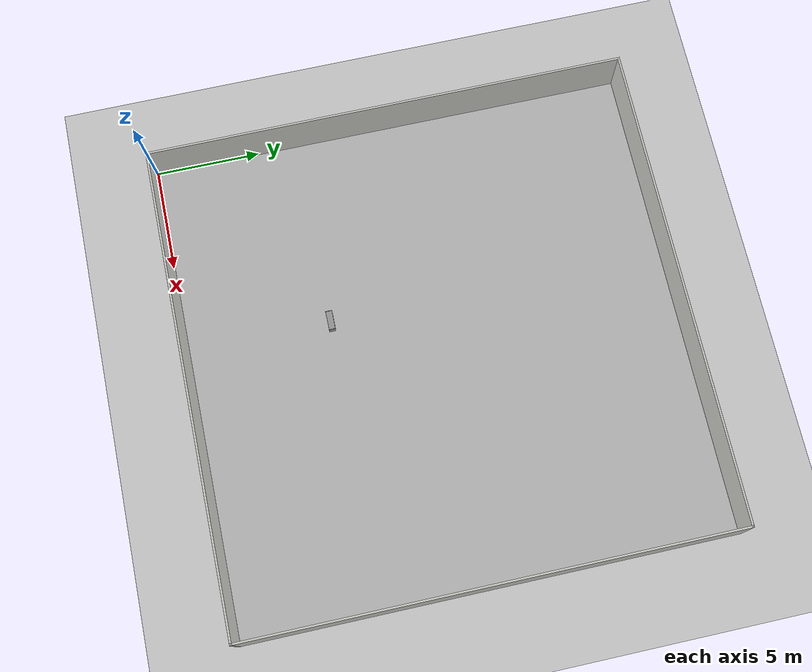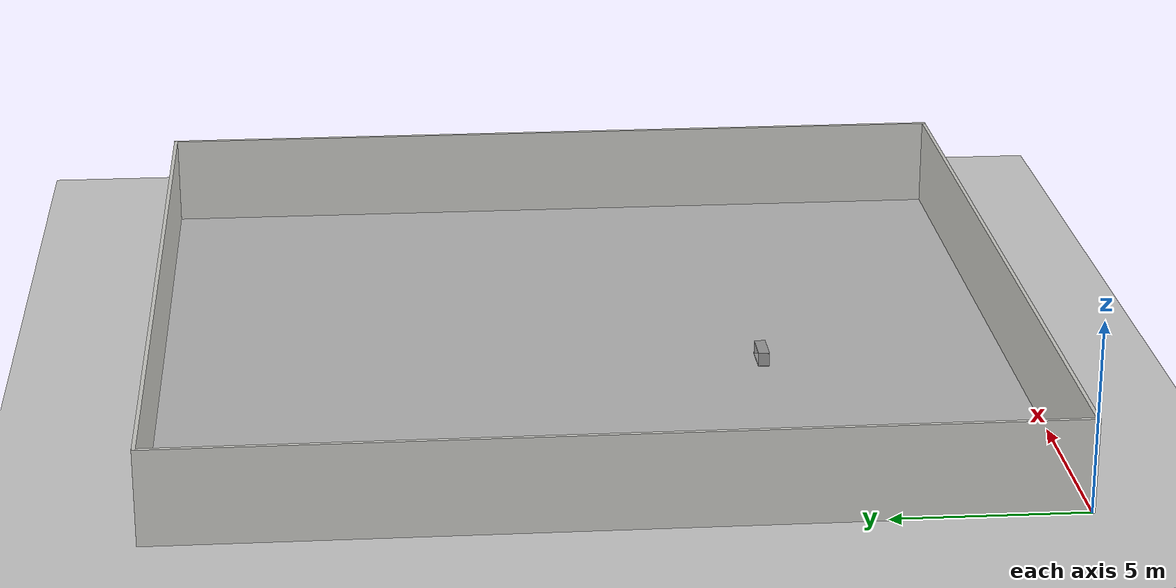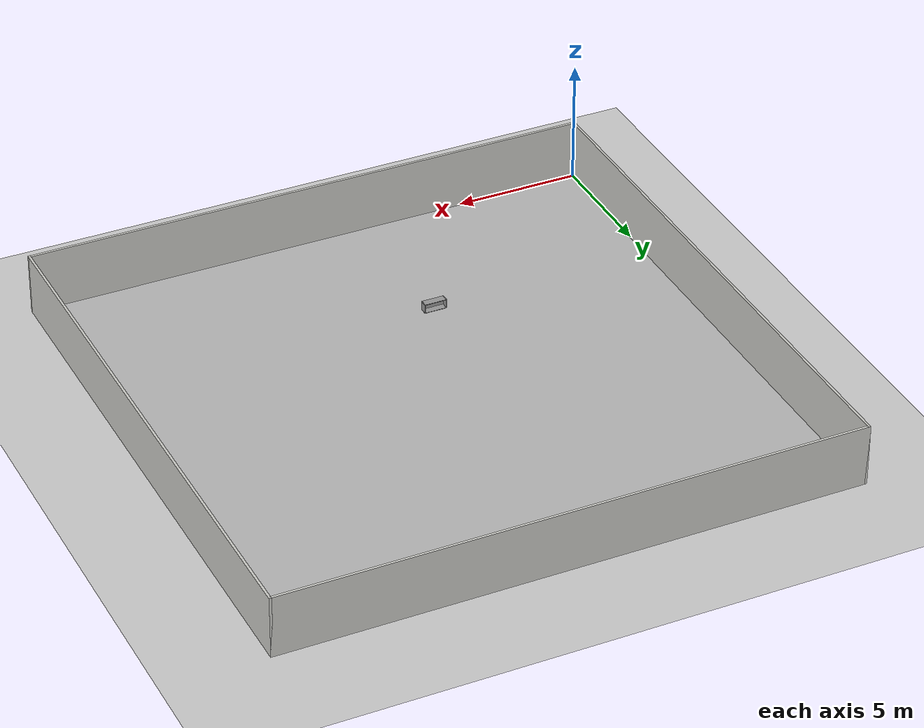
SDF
<sdf version="1.6">
 <world name="default">
  <model name="ground_plane">
   <static>1</static>
   <link name="link">
    <collision name="collision">
     <geometry><plane><normal>0 0 1</normal><size>100 100</size></plane></geometry>
     <surface><friction><ode><mu>100</mu><mu2>50</mu2></ode></friction></surface>
    </collision>
    <visual name="visual">
     <cast_shadows>0</cast_shadows>
     <geometry><plane><normal>0 0 1</normal><size>100 100</size></plane></geometry>
     <material>
      <script><uri>file://media/materials/scripts/gazebo.material</uri><name>Gazebo/Grey</name></script>
     </material>
    </visual>
   </link>
  </model>
  <model name="Wall_Cabinet_36x15W_2">
   <link name="Wall_0">
    <pose>0 0 0.01 0 -0 0</pose>
    <inertial>
     <mass>1.9796</mass>
     <inertia><ixx>0.0145</ixx><iyy>0.1511</iyy><izz>0.1367</izz><ixy>0</ixy><ixz>0</ixz><iyz>0</iyz></inertia>
    </inertial>
    <collision name="Wall_0_Collision"><geometry><box><size>0.91 0.296 0.02</size></box></geometry></collision>
    <visual name="Wall_0_Visual">
     <geometry><box><size>0.91 0.296 0.02</size></box></geometry>
     <material>
      <script><uri>file://media/materials/scripts/gazebo.material</uri><name>Gazebo/Grey</name></script>
      <ambient>1 1 1 1</ambient>
     </material>
    </visual>
   </link>
   <joint name="0_2" type="fixed">
    <pose>-0.455 0 0 0 -0 0</pose>
    <parent>Wall_2</parent>
    <child>Wall_0</child>
    <axis>
     <xyz>0 0 1</xyz>
     <use_parent_model_frame>0</use_parent_model_frame>
     <limit><lower>-1e+16</lower><upper>1e+16</upper></limit>
    </axis>
   </joint>
   <joint name="0_4" type="fixed">
    <pose>0.455 0 0 0 -0 0</pose>
    <parent>Wall_4</parent>
    <child>Wall_0</child>
    <axis>
     <xyz>0 0 1</xyz>
     <use_parent_model_frame>0</use_parent_model_frame>
     <limit><lower>-1e+16</lower><upper>1e+16</upper></limit>
    </axis>
   </joint>
   <joint name="0_8" type="fixed">
    <pose>0 -0.148 0 0 -0 0</pose>
    <parent>Wall_8</parent>
    <child>Wall_0</child>
    <axis>
     <xyz>0 0 1</xyz>
     <use_parent_model_frame>0</use_parent_model_frame>
     <limit><lower>-1e+16</lower><upper>1e+16</upper></limit>
    </axis>
   </joint>
   <link name="Wall_2">
    <pose>-0.445 0 0.192 0 -0 0</pose>
    <inertial>
     <mass>0.8353</mass>
     <inertia><ixx>0.0061</ixx><iyy>0.0164</iyy><izz>0.0103</izz><ixy>0</ixy><ixz>0</ixz><iyz>0</iyz></inertia>
    </inertial>
    <collision name="Wall_2_Collision"><geometry><box><size>0.02 0.296 0.384</size></box></geometry></collision>
    <visual name="Wall_2_Visual">
     <geometry><box><size>0.02 0.296 0.384</size></box></geometry>
     <material>
      <script><uri>file://media/materials/scripts/gazebo.material</uri><name>Gazebo/Grey</name></script>
      <ambient>1 1 1 1</ambient>
     </material>
    </visual>
   </link>
   <link name="Wall_4">
    <pose>0.445 0 0.192 0 -0 0</pose>
    <inertial>
     <mass>0.8353</mass>
     <inertia><ixx>0.0061</ixx><iyy>0.0164</iyy><izz>0.0103</izz><ixy>0</ixy><ixz>0</ixz><iyz>0</iyz></inertia>
    </inertial>
    <collision name="Wall_4_Collision"><geometry><box><size>0.02 0.296 0.384</size></box></geometry></collision>
    <visual name="Wall_4_Visual">
     <geometry><box><size>0.02 0.296 0.384</size></box></geometry>
     <material>
      <script><uri>file://media/materials/scripts/gazebo.material</uri><name>Gazebo/Grey</name></script>
      <ambient>1 1 1 1</ambient>
     </material>
    </visual>
   </link>
   <link name="Wall_6">
    <pose>0 0 0.374 0 -0 0</pose>
    <inertial>
     <mass>1.9796</mass>
     <inertia><ixx>0.0145</ixx><iyy>0.1511</iyy><izz>0.1367</izz><ixy>0</ixy><ixz>0</ixz><iyz>0</iyz></inertia>
    </inertial>
    <collision name="Wall_6_Collision"><geometry><box><size>0.91 0.296 0.02</size></box></geometry></collision>
    <visual name="Wall_6_Visual">
     <geometry><box><size>0.91 0.296 0.02</size></box></geometry>
     <material>
      <script><uri>file://media/materials/scripts/gazebo.material</uri><name>Gazebo/Grey</name></script>
      <ambient>1 1 1 1</ambient>
     </material>
    </visual>
   </link>
   <joint name="6_2" type="fixed">
    <pose>-0.455 0 0 0 -0 0</pose>
    <parent>Wall_2</parent>
    <child>Wall_6</child>
    <axis>
     <xyz>0 0 1</xyz>
     <use_parent_model_frame>0</use_parent_model_frame>
     <limit><lower>-1e+16</lower><upper>1e+16</upper></limit>
    </axis>
   </joint>
   <joint name="6_4" type="fixed">
    <pose>0.455 0 0 0 -0 0</pose>
    <parent>Wall_4</parent>
    <child>Wall_6</child>
    <axis>
     <xyz>0 0 1</xyz>
     <use_parent_model_frame>0</use_parent_model_frame>
     <limit><lower>-1e+16</lower><upper>1e+16</upper></limit>
    </axis>
   </joint>
   <joint name="6_8" type="fixed">
    <pose>0 -0.148 0 0 -0 0</pose>
    <parent>Wall_8</parent>
    <child>Wall_6</child>
    <axis>
     <xyz>0 0 1</xyz>
     <use_parent_model_frame>0</use_parent_model_frame>
     <limit><lower>-1e+16</lower><upper>1e+16</upper></limit>
    </axis>
   </joint>
   <link name="Wall_8">
    <pose>0 -0.138 0.19 0 -0 0</pose>
    <inertial>
     <mass>2.5302</mass>
     <inertia><ixx>0.0305</ixx><iyy>0.1732</iyy><izz>0.2035</izz><ixy>0</ixy><ixz>0</ixz><iyz>0</iyz></inertia>
    </inertial>
    <collision name="Wall_8_Collision"><geometry><box><size>0.906 0.02 0.38</size></box></geometry></collision>
    <visual name="Wall_8_Visual">
     <geometry><box><size>0.906 0.02 0.38</size></box></geometry>
     <material>
      <script><uri>file://media/materials/scripts/gazebo.material</uri><name>Gazebo/Grey</name></script>
      <ambient>1 1 1 1</ambient>
     </material>
    </visual>
   </link>
   <joint name="8_2" type="fixed">
    <pose>-0.453 0 0 0 -0 0</pose>
    <parent>Wall_2</parent>
    <child>Wall_8</child>
    <axis>
     <xyz>0 1 0</xyz>
     <use_parent_model_frame>0</use_parent_model_frame>
     <limit><lower>-1e+16</lower><upper>1e+16</upper></limit>
    </axis>
   </joint>
   <joint name="8_4" type="fixed">
    <pose>0.453 0 0 0 -0 0</pose>
    <parent>Wall_4</parent>
    <child>Wall_8</child>
    <axis>
     <xyz>0 1 0</xyz>
     <use_parent_model_frame>0</use_parent_model_frame>
     <limit><lower>-1e+16</lower><upper>1e+16</upper></limit>
    </axis>
   </joint>
   <static>1</static>
   <pose>9.36826 6.84676 0.387447 0 -0 0</pose>
  </model>
  <model name="large_wall">
   <pose>11.5 11.5 0 0 -0 0</pose>
   <link name="Wall_3">
    <collision name="Wall_3_Collision">
     <geometry><box><size>23.1 0.1 2.5</size></box></geometry>
     <pose>0 0 1.25 0 -0 0</pose>
    </collision>
    <visual name="Wall_3_Visual">
     <pose>0 0 1.25 0 -0 0</pose>
     <geometry><box><size>23.1 0.1 2.5</size></box></geometry>
     <material>
      <script><uri>file://media/materials/scripts/gazebo.material</uri><name>Gazebo/CeilingTiled</name></script>
      <ambient>1 0.764706 0.305882 1</ambient>
     </material>
     <meta><layer>0</layer></meta>
    </visual>
    <pose>0 11.5 0 0 -0 0</pose>
   </link>
   <link name="Wall_4">
    <collision name="Wall_4_Collision">
     <geometry><box><size>23.1 0.1 2.5</size></box></geometry>
     <pose>0 0 1.25 0 -0 0</pose>
    </collision>
    <visual name="Wall_4_Visual">
     <pose>0 0 1.25 0 -0 0</pose>
     <geometry><box><size>23.1 0.1 2.5</size></box></geometry>
     <material>
      <script><uri>file://media/materials/scripts/gazebo.material</uri><name>Gazebo/CeilingTiled</name></script>
      <ambient>1 0.764706 0.305882 1</ambient>
     </material>
     <meta><layer>0</layer></meta>
    </visual>
    <pose>11.5 0 0 0 0 -1.5708</pose>
   </link>
   <link name="Wall_5">
    <collision name="Wall_5_Collision">
     <geometry><box><size>23.1 0.1 2.5</size></box></geometry>
     <pose>0 0 1.25 0 -0 0</pose>
    </collision>
    <visual name="Wall_5_Visual">
     <pose>0 0 1.25 0 -0 0</pose>
     <geometry><box><size>23.1 0.1 2.5</size></box></geometry>
     <material>
      <script><uri>file://media/materials/scripts/gazebo.material</uri><name>Gazebo/CeilingTiled</name></script>
      <ambient>1 0.764706 0.305882 1</ambient>
     </material>
     <meta><layer>0</layer></meta>
    </visual>
    <pose>0 -11.5 0 0 -0 3.14159</pose>
   </link>
   <link name="Wall_6">
    <collision name="Wall_6_Collision">
     <geometry><box><size>23.1 0.1 2.5</size></box></geometry>
     <pose>0 0 1.25 0 -0 0</pose>
    </collision>
    <visual name="Wall_6_Visual">
     <pose>0 0 1.25 0 -0 0</pose>
     <geometry><box><size>23.1 0.1 2.5</size></box></geometry>
     <material>
      <script><uri>file://media/materials/scripts/gazebo.material</uri><name>Gazebo/CeilingTiled</name></script>
      <ambient>1 0.764706 0.305882 1</ambient>
     </material>
     <meta><layer>0</layer></meta>
    </visual>
    <pose>-11.5 0 0 0 -0 1.5708</pose>
   </link>
   <static>1</static>
  </model>
  <model name="Floor_room">
   <link name="main">
    <pose>0 0 0.01 0 -0 0</pose>
    <collision name="main_Collision"><geometry><box><size>23 23 0.001</size></box></geometry></collision>
    <visual name="main_Visual">
     <geometry><box><size>23 23 0.001</size></box></geometry>
     <material>
      <script>
       <uri>model://Floor_room/materials/scripts</uri>
       <uri>model://Floor_room/materials/textures</uri>
       <name>floor_room</name>
      </script>
     </material>
    </visual>
   </link>
   <static>1</static>
   <pose>11.4579 11.4508 0 0 -0 0</pose>
  </model>
 </world>
</sdf>
